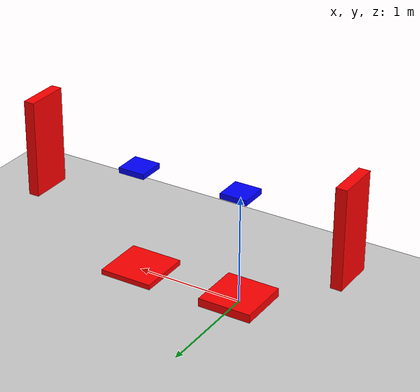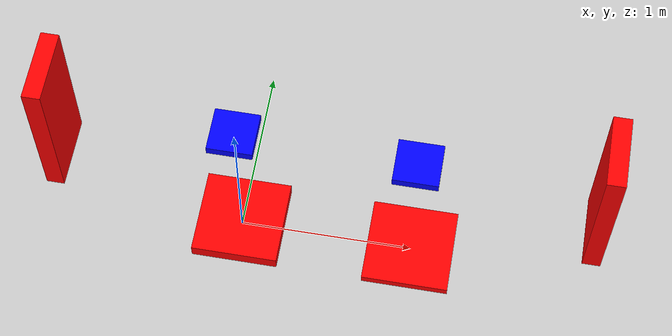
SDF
<?xml version="1.0" ?>
<sdf version="1.11">
  <world name="set_model_state">
    <gravity>0 0 0</gravity>
    <plugin
      filename="gz-sim-physics-system"
      name="gz::sim::systems::Physics">
    </plugin>
    <plugin
      filename="gz-sim-scene-broadcaster-system"
      name="gz::sim::systems::SceneBroadcaster">
    </plugin>

    <light type="directional" name="sun">
      <cast_shadows>true</cast_shadows>
      <pose>0 0 10 0 0 0</pose>
      <diffuse>0.8 0.8 0.8 1</diffuse>
      <specular>0.2 0.2 0.2 1</specular>
      <attenuation>
        <range>1000</range>
        <constant>0.9</constant>
        <linear>0.01</linear>
        <quadratic>0.001</quadratic>
      </attenuation>
      <direction>-0.5 0.1 -0.9</direction>
    </light>
    <model name="ground_plane">
      <static>true</static>
      <link name="link">
        <collision name="collision">
          <geometry>
            <plane>
              <normal>0 0 1</normal>
              <size>100 100</size>
            </plane>
          </geometry>
        </collision>
        <visual name="visual">
          <geometry>
            <plane>
              <normal>0 0 1</normal>
              <size>100 100</size>
            </plane>
          </geometry>
          <material>
            <ambient>0.8 0.8 0.8 1</ambient>
            <diffuse>0.8 0.8 0.8 1</diffuse>
            <specular>0.8 0.8 0.8 1</specular>
          </material>
        </visual>
      </link>
    </model>
    <model name="model_state_example_degrees">
      <pose>0 0 0.04 0 0 0</pose>
      <link name="base_link">
        <inertial auto="true">
          <density>6000</density>
        </inertial>
        <visual name="base_visual">
          <geometry>
            <box>
              <size>0.5 0.5 0.08</size>
            </box>
          </geometry>
          <material>
            <ambient>1.0 0.0 0.0 1</ambient>
            <diffuse>1.0 0.0 0.0 1</diffuse>
            <specular>1.0 0.0 0.0 1</specular>
          </material>
        </visual>
        <collision name="base_collision">
          <geometry>
            <box>
              <size>0.5 0.5 0.08</size>
            </box>
          </geometry>
        </collision>
      </link>
      <link name="rotor">
        <pose>0.0 0.0 1.0 0.0 0 0</pose>
        <inertial auto="true">
          <density>192</density>
        </inertial>
        <visual name="visual">
          <geometry>
            <box>
              <size>0.25 0.25 0.05</size>
            </box>
          </geometry>
          <material>
            <ambient>0.0 0.0 1.0 1</ambient>
            <diffuse>0.0 0.0 1.0 1</diffuse>
            <specular>0.0 0.0 1.0 1</specular>
          </material>
        </visual>
        <collision name="collision">
          <geometry>
            <box>
              <size>0.25 0.25 0.05</size>
            </box>
          </geometry>
        </collision>
      </link>

      <joint name="j1" type="revolute">
        <pose>0 0 -0.5 0 0 0</pose>
        <parent>base_link</parent>
        <child>rotor</child>
        <axis>
          <xyz>0 0 1</xyz>
          <dynamics>
            <damping>0.0</damping>
          </dynamics>
        </axis>
      </joint>
      <plugin
        filename="gz-sim-set-model-state-system"
        name="gz::sim::systems::SetModelState">
        <model_state>
          <joint_state name="j1">
            <axis_state>
              <position degrees="true">60</position>
              <velocity degrees="true">-30</velocity>
            </axis_state>
          </joint_state>
        </model_state>
      </plugin>
    </model>

    <model name="model_state_example_radians">
      <pose>1.0 0 0.005 0 0 0</pose>
      <link name="base_link">
        <inertial auto="true">
          <density>6000</density>
        </inertial>
        <visual name="base_visual">
          <geometry>
            <box>
              <size>0.5 0.5 0.08</size>
            </box>
          </geometry>
          <material>
            <ambient>1.0 0.0 0.0 1</ambient>
            <diffuse>1.0 0.0 0.0 1</diffuse>
            <specular>1.0 0.0 0.0 1</specular>
          </material>
        </visual>
        <collision name="base_collision">
          <geometry>
            <box>
              <size>0.5 0.5 0.08</size>
            </box>
          </geometry>
        </collision>
      </link>
      <link name="rotor">
        <pose>0.0 0.0 1.0 0.0 0 0</pose>
        <inertial auto="true">
          <density>192</density>
        </inertial>
        <visual name="visual">
          <geometry>
            <box>
              <size>0.25 0.25 0.05</size>
            </box>
          </geometry>
          <material>
            <ambient>0.0 0.0 1.0 1</ambient>
            <diffuse>0.0 0.0 1.0 1</diffuse>
            <specular>0.0 0.0 1.0 1</specular>
          </material>
        </visual>
        <collision name="collision">
          <geometry>
            <box>
              <size>0.25 0.25 0.05</size>
            </box>
          </geometry>
        </collision>
      </link>

      <joint name="j1" type="revolute">
        <pose>0 0 -0.5 0 0 0</pose>
        <parent>base_link</parent>
        <child>rotor</child>
        <axis>
          <xyz>0 0 1</xyz>
          <dynamics>
            <damping>0.0</damping>
          </dynamics>
        </axis>
      </joint>
      <plugin
        filename="gz-sim-set-model-state-system"
        name="gz::sim::systems::SetModelState">
        <model_state>
          <joint_state name="j1">
            <axis_state>
              <position>1.047</position>
              <velocity>-0.523</velocity>
            </axis_state>
          </joint_state>
        </model_state>
      </plugin>
    </model>

    <model name="model_state_example_link_velocity_radians">
      <pose>2 0 1 0 0 0</pose>
      <link name="box_link">
        <pose>0.0 0.0 0.0 0 0 0</pose>
        <inertial auto="true">
           <density>277.7</density>
        </inertial>
        <visual name="box_visual">
          <pose>0.0 0.0 0.0 0 0 0</pose>
          <geometry>
            <box>
              <size>0.1 0.4 0.9</size>
            </box>
          </geometry>
          <material>
            <ambient>1.0 0.0 0.0 1</ambient>
            <diffuse>1.0 0.0 0.0 1</diffuse>
            <specular>1.0 0.0 0.0 1</specular>
          </material>
        </visual>
        <collision name="box_collision">
          <pose>0.0 0.0 0.0 0 0 0</pose>
          <geometry>
            <box>
              <size>0.1 0.4 0.9</size>
            </box>
          </geometry>
        </collision>
      </link>
      <plugin
        filename="gz-sim-set-model-state-system"
        name="gz::sim::systems::SetModelState">
        <model_state>
         <link_state name="box_link">
           <linear_velocity>0.9 0.4 0.1</linear_velocity>
           <angular_velocity  degrees="false">0.1 5 0.1</angular_velocity>
         </link_state>
       </model_state>
      </plugin>
      </model>

    <model name="model_state_example_link_velocity_degrees">
      <pose>-1 0 1 0 0 0</pose>
      <link name="box_link">
        <pose>0.0 0.0 0.0 0 0 0</pose>
        <inertial auto="true">
           <density>277.7</density>
        </inertial>
        <visual name="box_visual">
          <pose>0.0 0.0 0.0 0 0 0</pose>
          <geometry>
            <box>
              <size>0.1 0.4 0.9</size>
            </box>
          </geometry>
          <material>
            <ambient>1.0 0.0 0.0 1</ambient>
            <diffuse>1.0 0.0 0.0 1</diffuse>
            <specular>1.0 0.0 0.0 1</specular>
          </material>
        </visual>
        <collision name="box_collision">
          <pose>0.0 0.0 0.0 0 0 0</pose>
          <geometry>
            <box>
              <size>0.1 0.4 0.9</size>
            </box>
          </geometry>
        </collision>
      </link>
      <plugin
        filename="gz-sim-set-model-state-system"
        name="gz::sim::systems::SetModelState">
        <model_state>
         <link_state name="box_link">
           <linear_velocity>0.9 -0.4 0.1</linear_velocity>
           <angular_velocity  degrees="true">5.73 286.479 5.73</angular_velocity>
         </link_state>
       </model_state>
      </plugin>
      </model>
  </world>
</sdf>
